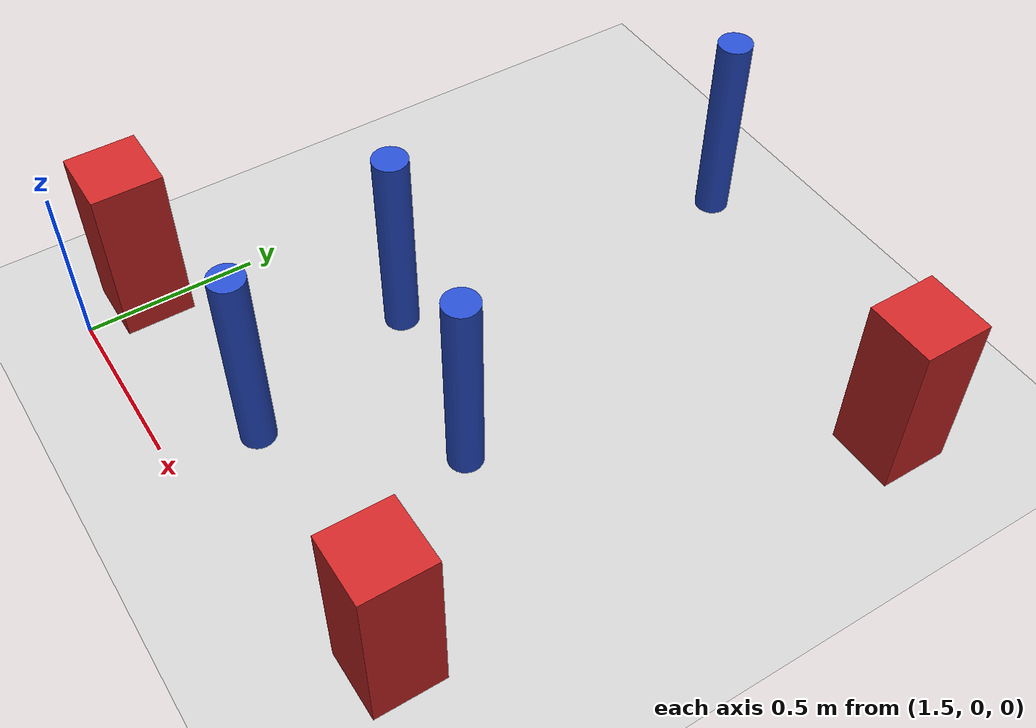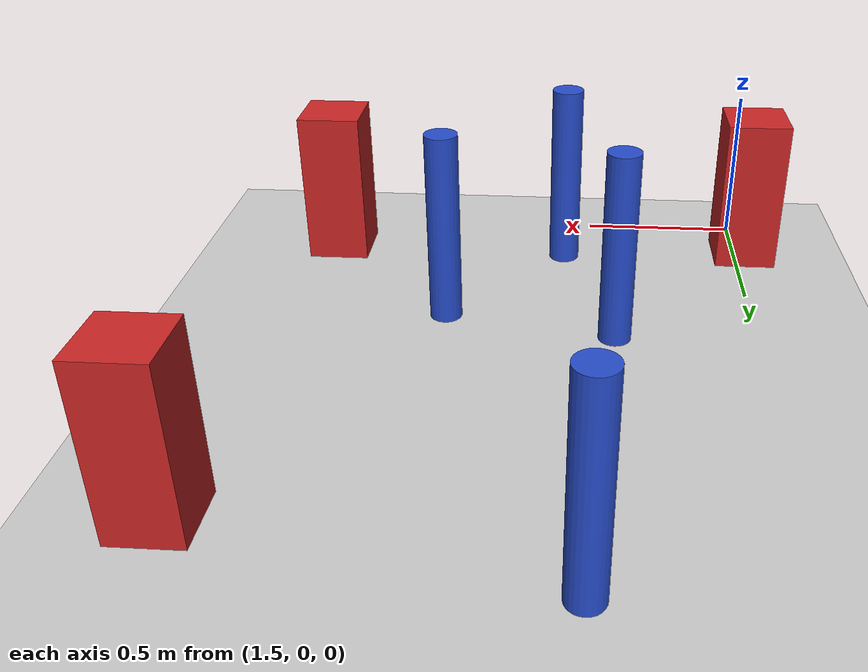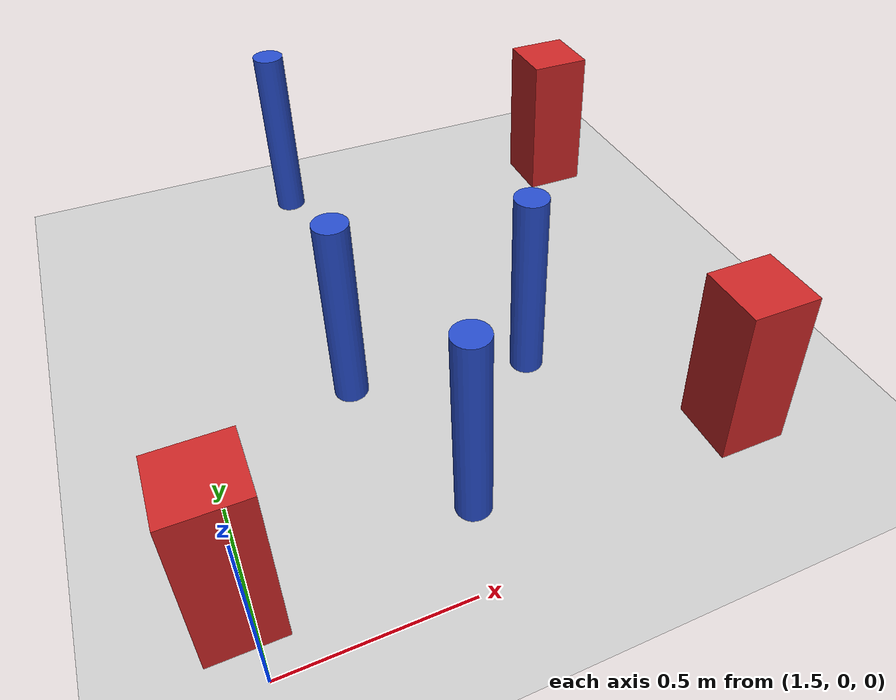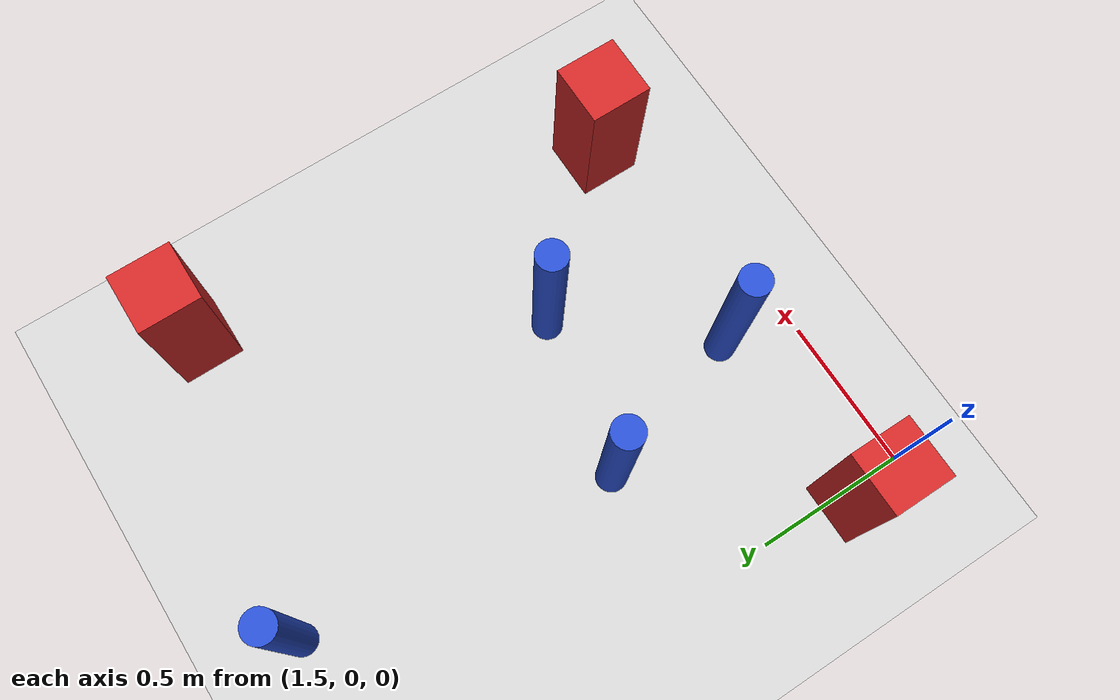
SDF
<sdf version="1.6">
 <world name="default">
  <model name="ground_plane">
   <static>1</static>
   <link name="link">
    <collision name="collision">
     <geometry><plane><normal>0 0 1</normal><size>100 100</size></plane></geometry>
     <surface><friction><ode><mu>100</mu><mu2>50</mu2></ode></friction></surface>
    </collision>
    <visual name="visual">
     <cast_shadows>0</cast_shadows>
     <geometry><plane><normal>0 0 1</normal><size>100 100</size></plane></geometry>
     <material>
      <ambient>1.0 1.0 1.0 1.0</ambient>
      <diffuse>0.8 0.8 0.8 1.0</diffuse>
      <specular>0.01 0.01 0.01 1.000000</specular>
     </material>
    </visual>
   </link>
  </model>
  <model name="square_post_obstacle27">
   <static>true</static>
   <pose>3.01187125218 1.64211949032 1.91545236811e-07 -7.35059704564e-06 1.12565212e-07 2.39332434364e-05</pose>
   <link name="link">
    <pose>0 0 0.25 0 -0 0</pose>
    <inertial>
     <mass>100</mass>
     <inertia>
      <ixx>0.166667</ixx>
      <ixy>0</ixy>
      <ixz>0</ixz>
      <iyy>0.166667</iyy>
      <iyz>0</iyz>
      <izz>0.166667</izz>
     </inertia>
    </inertial>
    <collision name="collision"><geometry><box><size>.2 .2 .5</size></box></geometry></collision>
    <visual name="visual">
     <geometry><box><size>.2 .2 .5</size></box></geometry>
     <material>
      <script><name>Gazebo/Red</name><uri>file://media/materials/scripts/gazebo.material</uri></script>
     </material>
    </visual>
   </link>
  </model>
  <model name="square_post_obstacle40">
   <static>true</static>
   <pose>2.87584545086 0.209195646803 1.91545236811e-07 -7.35059704564e-06 1.12565212e-07 2.39332434364e-05</pose>
   <link name="link">
    <pose>0 0 0.25 0 -0 0</pose>
    <inertial>
     <mass>100</mass>
     <inertia>
      <ixx>0.166667</ixx>
      <ixy>0</ixy>
      <ixz>0</ixz>
      <iyy>0.166667</iyy>
      <iyz>0</iyz>
      <izz>0.166667</izz>
     </inertia>
    </inertial>
    <collision name="collision"><geometry><box><size>.2 .2 .5</size></box></geometry></collision>
    <visual name="visual">
     <geometry><box><size>.2 .2 .5</size></box></geometry>
     <material>
      <script><name>Gazebo/Red</name><uri>file://media/materials/scripts/gazebo.material</uri></script>
     </material>
    </visual>
   </link>
  </model>
  <model name="pole_obstacle63">
   <static>true</static>
   <pose>1.93131905964 0.776335240626 7.38925637345e-09 -8.47170692799e-08 1.24976765075e-08 -1.74513093017e-07</pose>
   <link name="link">
    <pose>0 0 0.3 0 -0 0</pose>
    <inertial>
     <mass>1</mass>
     <inertia><ixx>0.145833</ixx><ixy>0</ixy><ixz>0</ixz><iyy>0.145833</iyy><iyz>0</iyz><izz>0.125</izz></inertia>
    </inertial>
    <collision name="collision">
     <geometry><cylinder><radius>0.05</radius><length>.6</length></cylinder></geometry>
    </collision>
    <visual name="visual">
     <geometry><cylinder><radius>0.05</radius><length>.6</length></cylinder></geometry>
     <material>
      <script><name>Gazebo/Blue</name><uri>file://media/materials/scripts/gazebo.material</uri></script>
     </material>
    </visual>
   </link>
  </model>
  <model name="pole_obstacle72">
   <static>true</static>
   <pose>2.02041794109 1.82717027471 7.38925637345e-09 -8.471706928e-08 1.24976765091e-08 -1.74513093016e-07</pose>
   <link name="link">
    <pose>0 0 0.3 0 -0 0</pose>
    <inertial>
     <mass>1</mass>
     <inertia><ixx>0.145833</ixx><ixy>0</ixy><ixz>0</ixz><iyy>0.145833</iyy><iyz>0</iyz><izz>0.125</izz></inertia>
    </inertial>
    <collision name="collision">
     <geometry><cylinder><radius>0.05</radius><length>.6</length></cylinder></geometry>
    </collision>
    <visual name="visual">
     <geometry><cylinder><radius>0.05</radius><length>.6</length></cylinder></geometry>
     <material>
      <script><name>Gazebo/Blue</name><uri>file://media/materials/scripts/gazebo.material</uri></script>
     </material>
    </visual>
   </link>
  </model>
  <model name="square_post_obstacle180">
   <static>true</static>
   <pose>1.47353914364 0.188988112197 1.91545236811e-07 -7.35059704564e-06 1.12565212e-07 2.39332434364e-05</pose>
   <link name="link">
    <pose>0 0 0.25 0 -0 0</pose>
    <inertial>
     <mass>100</mass>
     <inertia>
      <ixx>0.166667</ixx>
      <ixy>0</ixy>
      <ixz>0</ixz>
      <iyy>0.166667</iyy>
      <iyz>0</iyz>
      <izz>0.166667</izz>
     </inertia>
    </inertial>
    <collision name="collision"><geometry><box><size>.2 .2 .5</size></box></geometry></collision>
    <visual name="visual">
     <geometry><box><size>.2 .2 .5</size></box></geometry>
     <material>
      <script><name>Gazebo/Red</name><uri>file://media/materials/scripts/gazebo.material</uri></script>
     </material>
    </visual>
   </link>
  </model>
  <model name="pole_obstacle215">
   <static>true</static>
   <pose>2.0935470157 0.244865106011 7.38925637345e-09 -8.471706928e-08 1.24976765149e-08 -1.74513093013e-07</pose>
   <link name="link">
    <pose>0 0 0.3 0 -0 0</pose>
    <inertial>
     <mass>1</mass>
     <inertia><ixx>0.145833</ixx><ixy>0</ixy><ixz>0</ixz><iyy>0.145833</iyy><iyz>0</iyz><izz>0.125</izz></inertia>
    </inertial>
    <collision name="collision">
     <geometry><cylinder><radius>0.05</radius><length>.6</length></cylinder></geometry>
    </collision>
    <visual name="visual">
     <geometry><cylinder><radius>0.05</radius><length>.6</length></cylinder></geometry>
     <material>
      <script><name>Gazebo/Blue</name><uri>file://media/materials/scripts/gazebo.material</uri></script>
     </material>
    </visual>
   </link>
  </model>
  <model name="pole_obstacle230">
   <static>true</static>
   <pose>2.45509000957 0.671740020781 7.38925637345e-09 -8.471706928e-08 1.24976765177e-08 -1.74513093012e-07</pose>
   <link name="link">
    <pose>0 0 0.3 0 -0 0</pose>
    <inertial>
     <mass>1</mass>
     <inertia><ixx>0.145833</ixx><ixy>0</ixy><ixz>0</ixz><iyy>0.145833</iyy><iyz>0</iyz><izz>0.125</izz></inertia>
    </inertial>
    <collision name="collision">
     <geometry><cylinder><radius>0.05</radius><length>.6</length></cylinder></geometry>
    </collision>
    <visual name="visual">
     <geometry><cylinder><radius>0.05</radius><length>.6</length></cylinder></geometry>
     <material>
      <script><name>Gazebo/Blue</name><uri>file://media/materials/scripts/gazebo.material</uri></script>
     </material>
    </visual>
   </link>
  </model>
 </world>
</sdf>
